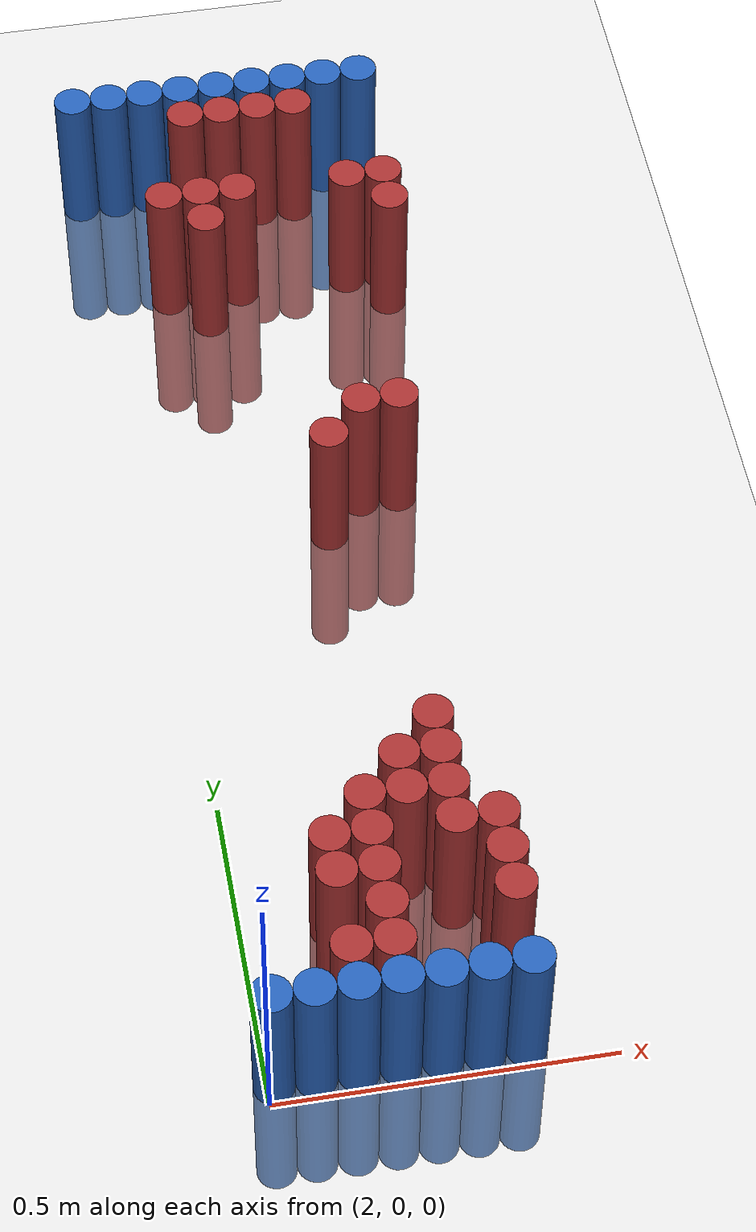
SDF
<sdf version="1.6">
 <world name="default">
  <model name="ground_plane">
   <static>1</static>
   <link name="link">
    <collision name="collision">
     <geometry><plane><normal>0 0 1</normal><size>100 100</size></plane></geometry>
     <surface><friction><ode><mu>100</mu><mu2>50</mu2></ode></friction></surface>
    </collision>
    <visual name="visual">
     <cast_shadows>0</cast_shadows>
     <geometry><plane><normal>0 0 1</normal><size>100 100</size></plane></geometry>
     <material>
      <script><uri>file://media/materials/scripts/gazebo.material</uri><name>Gazebo/Grey</name></script>
     </material>
    </visual>
   </link>
  </model>
  <model name="unit_cylinder_92">
   <static>1</static>
   <pose>1.950000 1.770000 0.000000 0.000000 0.000000 0.000000</pose>
   <link name="link">
    <inertial>
     <mass>1</mass>
     <inertia><ixx>0.145833</ixx><ixy>0</ixy><ixz>0</ixz><iyy>0.145833</iyy><iyz>0</iyz><izz>0.125</izz></inertia>
    </inertial>
    <collision name="collision">
     <geometry><cylinder><radius>0.030000</radius><length>0.5</length></cylinder></geometry>
    </collision>
    <visual name="visual">
     <geometry><cylinder><radius>0.030000</radius><length>0.5</length></cylinder></geometry>
     <material>
      <ambient>0.152000 0.379000 0.720000 1</ambient>
      <diffuse>0.152000 0.379000 0.720000 1</diffuse>
     </material>
     <material>
      <script><name>Gazebo/Grey</name><uri>file://media/materials/scripts/gazebo.material</uri></script>
     </material>
    </visual>
   </link>
  </model>
  <model name="unit_cylinder_93">
   <static>1</static>
   <pose>2.010000 0.030000 0.000000 0.000000 0.000000 0.000000</pose>
   <link name="link">
    <inertial>
     <mass>1</mass>
     <inertia><ixx>0.145833</ixx><ixy>0</ixy><ixz>0</ixz><iyy>0.145833</iyy><iyz>0</iyz><izz>0.125</izz></inertia>
    </inertial>
    <collision name="collision">
     <geometry><cylinder><radius>0.030000</radius><length>0.5</length></cylinder></geometry>
    </collision>
    <visual name="visual">
     <geometry><cylinder><radius>0.030000</radius><length>0.5</length></cylinder></geometry>
     <material>
      <ambient>0.152000 0.379000 0.720000 1</ambient>
      <diffuse>0.152000 0.379000 0.720000 1</diffuse>
     </material>
     <material>
      <script><name>Gazebo/Grey</name><uri>file://media/materials/scripts/gazebo.material</uri></script>
     </material>
    </visual>
   </link>
  </model>
  <model name="unit_cylinder_94">
   <static>1</static>
   <pose>2.010000 1.770000 0.000000 0.000000 0.000000 0.000000</pose>
   <link name="link">
    <inertial>
     <mass>1</mass>
     <inertia><ixx>0.145833</ixx><ixy>0</ixy><ixz>0</ixz><iyy>0.145833</iyy><iyz>0</iyz><izz>0.125</izz></inertia>
    </inertial>
    <collision name="collision">
     <geometry><cylinder><radius>0.030000</radius><length>0.5</length></cylinder></geometry>
    </collision>
    <visual name="visual">
     <geometry><cylinder><radius>0.030000</radius><length>0.5</length></cylinder></geometry>
     <material>
      <ambient>0.152000 0.379000 0.720000 1</ambient>
      <diffuse>0.152000 0.379000 0.720000 1</diffuse>
     </material>
     <material>
      <script><name>Gazebo/Grey</name><uri>file://media/materials/scripts/gazebo.material</uri></script>
     </material>
    </visual>
   </link>
  </model>
  <model name="unit_cylinder_95">
   <static>1</static>
   <pose>2.070000 1.770000 0.000000 0.000000 0.000000 0.000000</pose>
   <link name="link">
    <inertial>
     <mass>1</mass>
     <inertia><ixx>0.145833</ixx><ixy>0</ixy><ixz>0</ixz><iyy>0.145833</iyy><iyz>0</iyz><izz>0.125</izz></inertia>
    </inertial>
    <collision name="collision">
     <geometry><cylinder><radius>0.030000</radius><length>0.5</length></cylinder></geometry>
    </collision>
    <visual name="visual">
     <geometry><cylinder><radius>0.030000</radius><length>0.5</length></cylinder></geometry>
     <material>
      <ambient>0.152000 0.379000 0.720000 1</ambient>
      <diffuse>0.152000 0.379000 0.720000 1</diffuse>
     </material>
     <material>
      <script><name>Gazebo/Grey</name><uri>file://media/materials/scripts/gazebo.material</uri></script>
     </material>
    </visual>
   </link>
  </model>
  <model name="unit_cylinder_96">
   <static>1</static>
   <pose>2.130000 1.770000 0.000000 0.000000 0.000000 0.000000</pose>
   <link name="link">
    <inertial>
     <mass>1</mass>
     <inertia><ixx>0.145833</ixx><ixy>0</ixy><ixz>0</ixz><iyy>0.145833</iyy><iyz>0</iyz><izz>0.125</izz></inertia>
    </inertial>
    <collision name="collision">
     <geometry><cylinder><radius>0.030000</radius><length>0.5</length></cylinder></geometry>
    </collision>
    <visual name="visual">
     <geometry><cylinder><radius>0.030000</radius><length>0.5</length></cylinder></geometry>
     <material>
      <ambient>0.152000 0.379000 0.720000 1</ambient>
      <diffuse>0.152000 0.379000 0.720000 1</diffuse>
     </material>
     <material>
      <script><name>Gazebo/Grey</name><uri>file://media/materials/scripts/gazebo.material</uri></script>
     </material>
    </visual>
   </link>
  </model>
  <model name="unit_cylinder_97">
   <static>1</static>
   <pose>2.190000 1.770000 0.000000 0.000000 0.000000 0.000000</pose>
   <link name="link">
    <inertial>
     <mass>1</mass>
     <inertia><ixx>0.145833</ixx><ixy>0</ixy><ixz>0</ixz><iyy>0.145833</iyy><iyz>0</iyz><izz>0.125</izz></inertia>
    </inertial>
    <collision name="collision">
     <geometry><cylinder><radius>0.030000</radius><length>0.5</length></cylinder></geometry>
    </collision>
    <visual name="visual">
     <geometry><cylinder><radius>0.030000</radius><length>0.5</length></cylinder></geometry>
     <material>
      <ambient>0.152000 0.379000 0.720000 1</ambient>
      <diffuse>0.152000 0.379000 0.720000 1</diffuse>
     </material>
     <material>
      <script><name>Gazebo/Grey</name><uri>file://media/materials/scripts/gazebo.material</uri></script>
     </material>
    </visual>
   </link>
  </model>
  <model name="unit_cylinder_98">
   <static>1</static>
   <pose>2.250000 1.770000 0.000000 0.000000 0.000000 0.000000</pose>
   <link name="link">
    <inertial>
     <mass>1</mass>
     <inertia><ixx>0.145833</ixx><ixy>0</ixy><ixz>0</ixz><iyy>0.145833</iyy><iyz>0</iyz><izz>0.125</izz></inertia>
    </inertial>
    <collision name="collision">
     <geometry><cylinder><radius>0.030000</radius><length>0.5</length></cylinder></geometry>
    </collision>
    <visual name="visual">
     <geometry><cylinder><radius>0.030000</radius><length>0.5</length></cylinder></geometry>
     <material>
      <ambient>0.152000 0.379000 0.720000 1</ambient>
      <diffuse>0.152000 0.379000 0.720000 1</diffuse>
     </material>
     <material>
      <script><name>Gazebo/Grey</name><uri>file://media/materials/scripts/gazebo.material</uri></script>
     </material>
    </visual>
   </link>
  </model>
  <model name="unit_cylinder_99">
   <static>1</static>
   <pose>2.310000 1.770000 0.000000 0.000000 0.000000 0.000000</pose>
   <link name="link">
    <inertial>
     <mass>1</mass>
     <inertia><ixx>0.145833</ixx><ixy>0</ixy><ixz>0</ixz><iyy>0.145833</iyy><iyz>0</iyz><izz>0.125</izz></inertia>
    </inertial>
    <collision name="collision">
     <geometry><cylinder><radius>0.030000</radius><length>0.5</length></cylinder></geometry>
    </collision>
    <visual name="visual">
     <geometry><cylinder><radius>0.030000</radius><length>0.5</length></cylinder></geometry>
     <material>
      <ambient>0.152000 0.379000 0.720000 1</ambient>
      <diffuse>0.152000 0.379000 0.720000 1</diffuse>
     </material>
     <material>
      <script><name>Gazebo/Grey</name><uri>file://media/materials/scripts/gazebo.material</uri></script>
     </material>
    </visual>
   </link>
  </model>
  <model name="unit_cylinder_100">
   <static>1</static>
   <pose>2.370000 1.770000 0.000000 0.000000 0.000000 0.000000</pose>
   <link name="link">
    <inertial>
     <mass>1</mass>
     <inertia><ixx>0.145833</ixx><ixy>0</ixy><ixz>0</ixz><iyy>0.145833</iyy><iyz>0</iyz><izz>0.125</izz></inertia>
    </inertial>
    <collision name="collision">
     <geometry><cylinder><radius>0.030000</radius><length>0.5</length></cylinder></geometry>
    </collision>
    <visual name="visual">
     <geometry><cylinder><radius>0.030000</radius><length>0.5</length></cylinder></geometry>
     <material>
      <ambient>0.152000 0.379000 0.720000 1</ambient>
      <diffuse>0.152000 0.379000 0.720000 1</diffuse>
     </material>
     <material>
      <script><name>Gazebo/Grey</name><uri>file://media/materials/scripts/gazebo.material</uri></script>
     </material>
    </visual>
   </link>
  </model>
  <model name="unit_cylinder_101">
   <static>1</static>
   <pose>2.430000 1.770000 0.000000 0.000000 0.000000 0.000000</pose>
   <link name="link">
    <inertial>
     <mass>1</mass>
     <inertia><ixx>0.145833</ixx><ixy>0</ixy><ixz>0</ixz><iyy>0.145833</iyy><iyz>0</iyz><izz>0.125</izz></inertia>
    </inertial>
    <collision name="collision">
     <geometry><cylinder><radius>0.030000</radius><length>0.5</length></cylinder></geometry>
    </collision>
    <visual name="visual">
     <geometry><cylinder><radius>0.030000</radius><length>0.5</length></cylinder></geometry>
     <material>
      <ambient>0.152000 0.379000 0.720000 1</ambient>
      <diffuse>0.152000 0.379000 0.720000 1</diffuse>
     </material>
     <material>
      <script><name>Gazebo/Grey</name><uri>file://media/materials/scripts/gazebo.material</uri></script>
     </material>
    </visual>
   </link>
  </model>
  <model name="unit_cylinder_125">
   <static>1</static>
   <pose>2.130000 1.710000 0.000000 0.000000 0.000000 0.000000</pose>
   <link name="link">
    <inertial>
     <mass>1</mass>
     <inertia><ixx>0.145833</ixx><ixy>0</ixy><ixz>0</ixz><iyy>0.145833</iyy><iyz>0</iyz><izz>0.125</izz></inertia>
    </inertial>
    <collision name="collision">
     <geometry><cylinder><radius>0.030000</radius><length>0.5</length></cylinder></geometry>
    </collision>
    <visual name="visual">
     <geometry><cylinder><radius>0.030000</radius><length>0.5</length></cylinder></geometry>
     <material>
      <ambient>0.648000 0.192000 0.192000 1</ambient>
      <diffuse>0.648000 0.192000 0.192000 1</diffuse>
     </material>
     <material>
      <script><name>Gazebo/Grey</name><uri>file://media/materials/scripts/gazebo.material</uri></script>
     </material>
    </visual>
   </link>
  </model>
  <model name="unit_cylinder_126">
   <static>1</static>
   <pose>2.190000 1.710000 0.000000 0.000000 0.000000 0.000000</pose>
   <link name="link">
    <inertial>
     <mass>1</mass>
     <inertia><ixx>0.145833</ixx><ixy>0</ixy><ixz>0</ixz><iyy>0.145833</iyy><iyz>0</iyz><izz>0.125</izz></inertia>
    </inertial>
    <collision name="collision">
     <geometry><cylinder><radius>0.030000</radius><length>0.5</length></cylinder></geometry>
    </collision>
    <visual name="visual">
     <geometry><cylinder><radius>0.030000</radius><length>0.5</length></cylinder></geometry>
     <material>
      <ambient>0.648000 0.192000 0.192000 1</ambient>
      <diffuse>0.648000 0.192000 0.192000 1</diffuse>
     </material>
     <material>
      <script><name>Gazebo/Grey</name><uri>file://media/materials/scripts/gazebo.material</uri></script>
     </material>
    </visual>
   </link>
  </model>
  <model name="unit_cylinder_127">
   <static>1</static>
   <pose>2.250000 1.710000 0.000000 0.000000 0.000000 0.000000</pose>
   <link name="link">
    <inertial>
     <mass>1</mass>
     <inertia><ixx>0.145833</ixx><ixy>0</ixy><ixz>0</ixz><iyy>0.145833</iyy><iyz>0</iyz><izz>0.125</izz></inertia>
    </inertial>
    <collision name="collision">
     <geometry><cylinder><radius>0.030000</radius><length>0.5</length></cylinder></geometry>
    </collision>
    <visual name="visual">
     <geometry><cylinder><radius>0.030000</radius><length>0.5</length></cylinder></geometry>
     <material>
      <ambient>0.648000 0.192000 0.192000 1</ambient>
      <diffuse>0.648000 0.192000 0.192000 1</diffuse>
     </material>
     <material>
      <script><name>Gazebo/Grey</name><uri>file://media/materials/scripts/gazebo.material</uri></script>
     </material>
    </visual>
   </link>
  </model>
  <model name="unit_cylinder_128">
   <static>1</static>
   <pose>2.310000 1.710000 0.000000 0.000000 0.000000 0.000000</pose>
   <link name="link">
    <inertial>
     <mass>1</mass>
     <inertia><ixx>0.145833</ixx><ixy>0</ixy><ixz>0</ixz><iyy>0.145833</iyy><iyz>0</iyz><izz>0.125</izz></inertia>
    </inertial>
    <collision name="collision">
     <geometry><cylinder><radius>0.030000</radius><length>0.5</length></cylinder></geometry>
    </collision>
    <visual name="visual">
     <geometry><cylinder><radius>0.030000</radius><length>0.5</length></cylinder></geometry>
     <material>
      <ambient>0.648000 0.192000 0.192000 1</ambient>
      <diffuse>0.648000 0.192000 0.192000 1</diffuse>
     </material>
     <material>
      <script><name>Gazebo/Grey</name><uri>file://media/materials/scripts/gazebo.material</uri></script>
     </material>
    </visual>
   </link>
  </model>
  <model name="unit_cylinder_154">
   <static>1</static>
   <pose>2.070000 1.530000 0.000000 0.000000 0.000000 0.000000</pose>
   <link name="link">
    <inertial>
     <mass>1</mass>
     <inertia><ixx>0.145833</ixx><ixy>0</ixy><ixz>0</ixz><iyy>0.145833</iyy><iyz>0</iyz><izz>0.125</izz></inertia>
    </inertial>
    <collision name="collision">
     <geometry><cylinder><radius>0.030000</radius><length>0.5</length></cylinder></geometry>
    </collision>
    <visual name="visual">
     <geometry><cylinder><radius>0.030000</radius><length>0.5</length></cylinder></geometry>
     <material>
      <ambient>0.648000 0.192000 0.192000 1</ambient>
      <diffuse>0.648000 0.192000 0.192000 1</diffuse>
     </material>
     <material>
      <script><name>Gazebo/Grey</name><uri>file://media/materials/scripts/gazebo.material</uri></script>
     </material>
    </visual>
   </link>
  </model>
  <model name="unit_cylinder_155">
   <static>1</static>
   <pose>2.130000 1.530000 0.000000 0.000000 0.000000 0.000000</pose>
   <link name="link">
    <inertial>
     <mass>1</mass>
     <inertia><ixx>0.145833</ixx><ixy>0</ixy><ixz>0</ixz><iyy>0.145833</iyy><iyz>0</iyz><izz>0.125</izz></inertia>
    </inertial>
    <collision name="collision">
     <geometry><cylinder><radius>0.030000</radius><length>0.5</length></cylinder></geometry>
    </collision>
    <visual name="visual">
     <geometry><cylinder><radius>0.030000</radius><length>0.5</length></cylinder></geometry>
     <material>
      <ambient>0.648000 0.192000 0.192000 1</ambient>
      <diffuse>0.648000 0.192000 0.192000 1</diffuse>
     </material>
     <material>
      <script><name>Gazebo/Grey</name><uri>file://media/materials/scripts/gazebo.material</uri></script>
     </material>
    </visual>
   </link>
  </model>
  <model name="unit_cylinder_156">
   <static>1</static>
   <pose>2.190000 1.530000 0.000000 0.000000 0.000000 0.000000</pose>
   <link name="link">
    <inertial>
     <mass>1</mass>
     <inertia><ixx>0.145833</ixx><ixy>0</ixy><ixz>0</ixz><iyy>0.145833</iyy><iyz>0</iyz><izz>0.125</izz></inertia>
    </inertial>
    <collision name="collision">
     <geometry><cylinder><radius>0.030000</radius><length>0.5</length></cylinder></geometry>
    </collision>
    <visual name="visual">
     <geometry><cylinder><radius>0.030000</radius><length>0.5</length></cylinder></geometry>
     <material>
      <ambient>0.648000 0.192000 0.192000 1</ambient>
      <diffuse>0.648000 0.192000 0.192000 1</diffuse>
     </material>
     <material>
      <script><name>Gazebo/Grey</name><uri>file://media/materials/scripts/gazebo.material</uri></script>
     </material>
    </visual>
   </link>
  </model>
  <model name="unit_cylinder_157">
   <static>1</static>
   <pose>2.370000 1.530000 0.000000 0.000000 0.000000 0.000000</pose>
   <link name="link">
    <inertial>
     <mass>1</mass>
     <inertia><ixx>0.145833</ixx><ixy>0</ixy><ixz>0</ixz><iyy>0.145833</iyy><iyz>0</iyz><izz>0.125</izz></inertia>
    </inertial>
    <collision name="collision">
     <geometry><cylinder><radius>0.030000</radius><length>0.5</length></cylinder></geometry>
    </collision>
    <visual name="visual">
     <geometry><cylinder><radius>0.030000</radius><length>0.5</length></cylinder></geometry>
     <material>
      <ambient>0.648000 0.192000 0.192000 1</ambient>
      <diffuse>0.648000 0.192000 0.192000 1</diffuse>
     </material>
     <material>
      <script><name>Gazebo/Grey</name><uri>file://media/materials/scripts/gazebo.material</uri></script>
     </material>
    </visual>
   </link>
  </model>
  <model name="unit_cylinder_158">
   <static>1</static>
   <pose>2.430000 1.530000 0.000000 0.000000 0.000000 0.000000</pose>
   <link name="link">
    <inertial>
     <mass>1</mass>
     <inertia><ixx>0.145833</ixx><ixy>0</ixy><ixz>0</ixz><iyy>0.145833</iyy><iyz>0</iyz><izz>0.125</izz></inertia>
    </inertial>
    <collision name="collision">
     <geometry><cylinder><radius>0.030000</radius><length>0.5</length></cylinder></geometry>
    </collision>
    <visual name="visual">
     <geometry><cylinder><radius>0.030000</radius><length>0.5</length></cylinder></geometry>
     <material>
      <ambient>0.648000 0.192000 0.192000 1</ambient>
      <diffuse>0.648000 0.192000 0.192000 1</diffuse>
     </material>
     <material>
      <script><name>Gazebo/Grey</name><uri>file://media/materials/scripts/gazebo.material</uri></script>
     </material>
    </visual>
   </link>
  </model>
  <model name="unit_cylinder_162">
   <static>1</static>
   <pose>2.130000 1.470000 0.000000 0.000000 0.000000 0.000000</pose>
   <link name="link">
    <inertial>
     <mass>1</mass>
     <inertia><ixx>0.145833</ixx><ixy>0</ixy><ixz>0</ixz><iyy>0.145833</iyy><iyz>0</iyz><izz>0.125</izz></inertia>
    </inertial>
    <collision name="collision">
     <geometry><cylinder><radius>0.030000</radius><length>0.5</length></cylinder></geometry>
    </collision>
    <visual name="visual">
     <geometry><cylinder><radius>0.030000</radius><length>0.5</length></cylinder></geometry>
     <material>
      <ambient>0.648000 0.192000 0.192000 1</ambient>
      <diffuse>0.648000 0.192000 0.192000 1</diffuse>
     </material>
     <material>
      <script><name>Gazebo/Grey</name><uri>file://media/materials/scripts/gazebo.material</uri></script>
     </material>
    </visual>
   </link>
  </model>
  <model name="unit_cylinder_163">
   <static>1</static>
   <pose>2.430000 1.470000 0.000000 0.000000 0.000000 0.000000</pose>
   <link name="link">
    <inertial>
     <mass>1</mass>
     <inertia><ixx>0.145833</ixx><ixy>0</ixy><ixz>0</ixz><iyy>0.145833</iyy><iyz>0</iyz><izz>0.125</izz></inertia>
    </inertial>
    <collision name="collision">
     <geometry><cylinder><radius>0.030000</radius><length>0.5</length></cylinder></geometry>
    </collision>
    <visual name="visual">
     <geometry><cylinder><radius>0.030000</radius><length>0.5</length></cylinder></geometry>
     <material>
      <ambient>0.648000 0.192000 0.192000 1</ambient>
      <diffuse>0.648000 0.192000 0.192000 1</diffuse>
     </material>
     <material>
      <script><name>Gazebo/Grey</name><uri>file://media/materials/scripts/gazebo.material</uri></script>
     </material>
    </visual>
   </link>
  </model>
  <model name="unit_cylinder_172">
   <static>1</static>
   <pose>2.310000 1.050000 0.000000 0.000000 0.000000 0.000000</pose>
   <link name="link">
    <inertial>
     <mass>1</mass>
     <inertia><ixx>0.145833</ixx><ixy>0</ixy><ixz>0</ixz><iyy>0.145833</iyy><iyz>0</iyz><izz>0.125</izz></inertia>
    </inertial>
    <collision name="collision">
     <geometry><cylinder><radius>0.030000</radius><length>0.5</length></cylinder></geometry>
    </collision>
    <visual name="visual">
     <geometry><cylinder><radius>0.030000</radius><length>0.5</length></cylinder></geometry>
     <material>
      <ambient>0.648000 0.192000 0.192000 1</ambient>
      <diffuse>0.648000 0.192000 0.192000 1</diffuse>
     </material>
     <material>
      <script><name>Gazebo/Grey</name><uri>file://media/materials/scripts/gazebo.material</uri></script>
     </material>
    </visual>
   </link>
  </model>
  <model name="unit_cylinder_173">
   <static>1</static>
   <pose>2.370000 1.050000 0.000000 0.000000 0.000000 0.000000</pose>
   <link name="link">
    <inertial>
     <mass>1</mass>
     <inertia><ixx>0.145833</ixx><ixy>0</ixy><ixz>0</ixz><iyy>0.145833</iyy><iyz>0</iyz><izz>0.125</izz></inertia>
    </inertial>
    <collision name="collision">
     <geometry><cylinder><radius>0.030000</radius><length>0.5</length></cylinder></geometry>
    </collision>
    <visual name="visual">
     <geometry><cylinder><radius>0.030000</radius><length>0.5</length></cylinder></geometry>
     <material>
      <ambient>0.648000 0.192000 0.192000 1</ambient>
      <diffuse>0.648000 0.192000 0.192000 1</diffuse>
     </material>
     <material>
      <script><name>Gazebo/Grey</name><uri>file://media/materials/scripts/gazebo.material</uri></script>
     </material>
    </visual>
   </link>
  </model>
  <model name="unit_cylinder_179">
   <static>1</static>
   <pose>2.250000 0.990000 0.000000 0.000000 0.000000 0.000000</pose>
   <link name="link">
    <inertial>
     <mass>1</mass>
     <inertia><ixx>0.145833</ixx><ixy>0</ixy><ixz>0</ixz><iyy>0.145833</iyy><iyz>0</iyz><izz>0.125</izz></inertia>
    </inertial>
    <collision name="collision">
     <geometry><cylinder><radius>0.030000</radius><length>0.5</length></cylinder></geometry>
    </collision>
    <visual name="visual">
     <geometry><cylinder><radius>0.030000</radius><length>0.5</length></cylinder></geometry>
     <material>
      <ambient>0.648000 0.192000 0.192000 1</ambient>
      <diffuse>0.648000 0.192000 0.192000 1</diffuse>
     </material>
     <material>
      <script><name>Gazebo/Grey</name><uri>file://media/materials/scripts/gazebo.material</uri></script>
     </material>
    </visual>
   </link>
  </model>
  <model name="unit_cylinder_200">
   <static>1</static>
   <pose>2.310000 0.450000 0.000000 0.000000 0.000000 0.000000</pose>
   <link name="link">
    <inertial>
     <mass>1</mass>
     <inertia><ixx>0.145833</ixx><ixy>0</ixy><ixz>0</ixz><iyy>0.145833</iyy><iyz>0</iyz><izz>0.125</izz></inertia>
    </inertial>
    <collision name="collision">
     <geometry><cylinder><radius>0.030000</radius><length>0.5</length></cylinder></geometry>
    </collision>
    <visual name="visual">
     <geometry><cylinder><radius>0.030000</radius><length>0.5</length></cylinder></geometry>
     <material>
      <ambient>0.648000 0.192000 0.192000 1</ambient>
      <diffuse>0.648000 0.192000 0.192000 1</diffuse>
     </material>
     <material>
      <script><name>Gazebo/Grey</name><uri>file://media/materials/scripts/gazebo.material</uri></script>
     </material>
    </visual>
   </link>
  </model>
  <model name="unit_cylinder_204">
   <static>1</static>
   <pose>2.250000 0.390000 0.000000 0.000000 0.000000 0.000000</pose>
   <link name="link">
    <inertial>
     <mass>1</mass>
     <inertia><ixx>0.145833</ixx><ixy>0</ixy><ixz>0</ixz><iyy>0.145833</iyy><iyz>0</iyz><izz>0.125</izz></inertia>
    </inertial>
    <collision name="collision">
     <geometry><cylinder><radius>0.030000</radius><length>0.5</length></cylinder></geometry>
    </collision>
    <visual name="visual">
     <geometry><cylinder><radius>0.030000</radius><length>0.5</length></cylinder></geometry>
     <material>
      <ambient>0.648000 0.192000 0.192000 1</ambient>
      <diffuse>0.648000 0.192000 0.192000 1</diffuse>
     </material>
     <material>
      <script><name>Gazebo/Grey</name><uri>file://media/materials/scripts/gazebo.material</uri></script>
     </material>
    </visual>
   </link>
  </model>
  <model name="unit_cylinder_205">
   <static>1</static>
   <pose>2.310000 0.390000 0.000000 0.000000 0.000000 0.000000</pose>
   <link name="link">
    <inertial>
     <mass>1</mass>
     <inertia><ixx>0.145833</ixx><ixy>0</ixy><ixz>0</ixz><iyy>0.145833</iyy><iyz>0</iyz><izz>0.125</izz></inertia>
    </inertial>
    <collision name="collision">
     <geometry><cylinder><radius>0.030000</radius><length>0.5</length></cylinder></geometry>
    </collision>
    <visual name="visual">
     <geometry><cylinder><radius>0.030000</radius><length>0.5</length></cylinder></geometry>
     <material>
      <ambient>0.648000 0.192000 0.192000 1</ambient>
      <diffuse>0.648000 0.192000 0.192000 1</diffuse>
     </material>
     <material>
      <script><name>Gazebo/Grey</name><uri>file://media/materials/scripts/gazebo.material</uri></script>
     </material>
    </visual>
   </link>
  </model>
  <model name="unit_cylinder_208">
   <static>1</static>
   <pose>2.190000 0.330000 0.000000 0.000000 0.000000 0.000000</pose>
   <link name="link">
    <inertial>
     <mass>1</mass>
     <inertia><ixx>0.145833</ixx><ixy>0</ixy><ixz>0</ixz><iyy>0.145833</iyy><iyz>0</iyz><izz>0.125</izz></inertia>
    </inertial>
    <collision name="collision">
     <geometry><cylinder><radius>0.030000</radius><length>0.5</length></cylinder></geometry>
    </collision>
    <visual name="visual">
     <geometry><cylinder><radius>0.030000</radius><length>0.5</length></cylinder></geometry>
     <material>
      <ambient>0.648000 0.192000 0.192000 1</ambient>
      <diffuse>0.648000 0.192000 0.192000 1</diffuse>
     </material>
     <material>
      <script><name>Gazebo/Grey</name><uri>file://media/materials/scripts/gazebo.material</uri></script>
     </material>
    </visual>
   </link>
  </model>
  <model name="unit_cylinder_209">
   <static>1</static>
   <pose>2.250000 0.330000 0.000000 0.000000 0.000000 0.000000</pose>
   <link name="link">
    <inertial>
     <mass>1</mass>
     <inertia><ixx>0.145833</ixx><ixy>0</ixy><ixz>0</ixz><iyy>0.145833</iyy><iyz>0</iyz><izz>0.125</izz></inertia>
    </inertial>
    <collision name="collision">
     <geometry><cylinder><radius>0.030000</radius><length>0.5</length></cylinder></geometry>
    </collision>
    <visual name="visual">
     <geometry><cylinder><radius>0.030000</radius><length>0.5</length></cylinder></geometry>
     <material>
      <ambient>0.648000 0.192000 0.192000 1</ambient>
      <diffuse>0.648000 0.192000 0.192000 1</diffuse>
     </material>
     <material>
      <script><name>Gazebo/Grey</name><uri>file://media/materials/scripts/gazebo.material</uri></script>
     </material>
    </visual>
   </link>
  </model>
  <model name="unit_cylinder_210">
   <static>1</static>
   <pose>2.310000 0.330000 0.000000 0.000000 0.000000 0.000000</pose>
   <link name="link">
    <inertial>
     <mass>1</mass>
     <inertia><ixx>0.145833</ixx><ixy>0</ixy><ixz>0</ixz><iyy>0.145833</iyy><iyz>0</iyz><izz>0.125</izz></inertia>
    </inertial>
    <collision name="collision">
     <geometry><cylinder><radius>0.030000</radius><length>0.5</length></cylinder></geometry>
    </collision>
    <visual name="visual">
     <geometry><cylinder><radius>0.030000</radius><length>0.5</length></cylinder></geometry>
     <material>
      <ambient>0.648000 0.192000 0.192000 1</ambient>
      <diffuse>0.648000 0.192000 0.192000 1</diffuse>
     </material>
     <material>
      <script><name>Gazebo/Grey</name><uri>file://media/materials/scripts/gazebo.material</uri></script>
     </material>
    </visual>
   </link>
  </model>
  <model name="unit_cylinder_213">
   <static>1</static>
   <pose>2.130000 0.270000 0.000000 0.000000 0.000000 0.000000</pose>
   <link name="link">
    <inertial>
     <mass>1</mass>
     <inertia><ixx>0.145833</ixx><ixy>0</ixy><ixz>0</ixz><iyy>0.145833</iyy><iyz>0</iyz><izz>0.125</izz></inertia>
    </inertial>
    <collision name="collision">
     <geometry><cylinder><radius>0.030000</radius><length>0.5</length></cylinder></geometry>
    </collision>
    <visual name="visual">
     <geometry><cylinder><radius>0.030000</radius><length>0.5</length></cylinder></geometry>
     <material>
      <ambient>0.648000 0.192000 0.192000 1</ambient>
      <diffuse>0.648000 0.192000 0.192000 1</diffuse>
     </material>
     <material>
      <script><name>Gazebo/Grey</name><uri>file://media/materials/scripts/gazebo.material</uri></script>
     </material>
    </visual>
   </link>
  </model>
  <model name="unit_cylinder_214">
   <static>1</static>
   <pose>2.190000 0.270000 0.000000 0.000000 0.000000 0.000000</pose>
   <link name="link">
    <inertial>
     <mass>1</mass>
     <inertia><ixx>0.145833</ixx><ixy>0</ixy><ixz>0</ixz><iyy>0.145833</iyy><iyz>0</iyz><izz>0.125</izz></inertia>
    </inertial>
    <collision name="collision">
     <geometry><cylinder><radius>0.030000</radius><length>0.5</length></cylinder></geometry>
    </collision>
    <visual name="visual">
     <geometry><cylinder><radius>0.030000</radius><length>0.5</length></cylinder></geometry>
     <material>
      <ambient>0.648000 0.192000 0.192000 1</ambient>
      <diffuse>0.648000 0.192000 0.192000 1</diffuse>
     </material>
     <material>
      <script><name>Gazebo/Grey</name><uri>file://media/materials/scripts/gazebo.material</uri></script>
     </material>
    </visual>
   </link>
  </model>
  <model name="unit_cylinder_215">
   <static>1</static>
   <pose>2.310000 0.270000 0.000000 0.000000 0.000000 0.000000</pose>
   <link name="link">
    <inertial>
     <mass>1</mass>
     <inertia><ixx>0.145833</ixx><ixy>0</ixy><ixz>0</ixz><iyy>0.145833</iyy><iyz>0</iyz><izz>0.125</izz></inertia>
    </inertial>
    <collision name="collision">
     <geometry><cylinder><radius>0.030000</radius><length>0.5</length></cylinder></geometry>
    </collision>
    <visual name="visual">
     <geometry><cylinder><radius>0.030000</radius><length>0.5</length></cylinder></geometry>
     <material>
      <ambient>0.648000 0.192000 0.192000 1</ambient>
      <diffuse>0.648000 0.192000 0.192000 1</diffuse>
     </material>
     <material>
      <script><name>Gazebo/Grey</name><uri>file://media/materials/scripts/gazebo.material</uri></script>
     </material>
    </visual>
   </link>
  </model>
  <model name="unit_cylinder_216">
   <static>1</static>
   <pose>2.370000 0.270000 0.000000 0.000000 0.000000 0.000000</pose>
   <link name="link">
    <inertial>
     <mass>1</mass>
     <inertia><ixx>0.145833</ixx><ixy>0</ixy><ixz>0</ixz><iyy>0.145833</iyy><iyz>0</iyz><izz>0.125</izz></inertia>
    </inertial>
    <collision name="collision">
     <geometry><cylinder><radius>0.030000</radius><length>0.5</length></cylinder></geometry>
    </collision>
    <visual name="visual">
     <geometry><cylinder><radius>0.030000</radius><length>0.5</length></cylinder></geometry>
     <material>
      <ambient>0.648000 0.192000 0.192000 1</ambient>
      <diffuse>0.648000 0.192000 0.192000 1</diffuse>
     </material>
     <material>
      <script><name>Gazebo/Grey</name><uri>file://media/materials/scripts/gazebo.material</uri></script>
     </material>
    </visual>
   </link>
  </model>
  <model name="unit_cylinder_219">
   <static>1</static>
   <pose>2.130000 0.210000 0.000000 0.000000 0.000000 0.000000</pose>
   <link name="link">
    <inertial>
     <mass>1</mass>
     <inertia><ixx>0.145833</ixx><ixy>0</ixy><ixz>0</ixz><iyy>0.145833</iyy><iyz>0</iyz><izz>0.125</izz></inertia>
    </inertial>
    <collision name="collision">
     <geometry><cylinder><radius>0.030000</radius><length>0.5</length></cylinder></geometry>
    </collision>
    <visual name="visual">
     <geometry><cylinder><radius>0.030000</radius><length>0.5</length></cylinder></geometry>
     <material>
      <ambient>0.648000 0.192000 0.192000 1</ambient>
      <diffuse>0.648000 0.192000 0.192000 1</diffuse>
     </material>
     <material>
      <script><name>Gazebo/Grey</name><uri>file://media/materials/scripts/gazebo.material</uri></script>
     </material>
    </visual>
   </link>
  </model>
  <model name="unit_cylinder_220">
   <static>1</static>
   <pose>2.190000 0.210000 0.000000 0.000000 0.000000 0.000000</pose>
   <link name="link">
    <inertial>
     <mass>1</mass>
     <inertia><ixx>0.145833</ixx><ixy>0</ixy><ixz>0</ixz><iyy>0.145833</iyy><iyz>0</iyz><izz>0.125</izz></inertia>
    </inertial>
    <collision name="collision">
     <geometry><cylinder><radius>0.030000</radius><length>0.5</length></cylinder></geometry>
    </collision>
    <visual name="visual">
     <geometry><cylinder><radius>0.030000</radius><length>0.5</length></cylinder></geometry>
     <material>
      <ambient>0.648000 0.192000 0.192000 1</ambient>
      <diffuse>0.648000 0.192000 0.192000 1</diffuse>
     </material>
     <material>
      <script><name>Gazebo/Grey</name><uri>file://media/materials/scripts/gazebo.material</uri></script>
     </material>
    </visual>
   </link>
  </model>
  <model name="unit_cylinder_221">
   <static>1</static>
   <pose>2.370000 0.210000 0.000000 0.000000 0.000000 0.000000</pose>
   <link name="link">
    <inertial>
     <mass>1</mass>
     <inertia><ixx>0.145833</ixx><ixy>0</ixy><ixz>0</ixz><iyy>0.145833</iyy><iyz>0</iyz><izz>0.125</izz></inertia>
    </inertial>
    <collision name="collision">
     <geometry><cylinder><radius>0.030000</radius><length>0.5</length></cylinder></geometry>
    </collision>
    <visual name="visual">
     <geometry><cylinder><radius>0.030000</radius><length>0.5</length></cylinder></geometry>
     <material>
      <ambient>0.648000 0.192000 0.192000 1</ambient>
      <diffuse>0.648000 0.192000 0.192000 1</diffuse>
     </material>
     <material>
      <script><name>Gazebo/Grey</name><uri>file://media/materials/scripts/gazebo.material</uri></script>
     </material>
    </visual>
   </link>
  </model>
  <model name="unit_cylinder_225">
   <static>1</static>
   <pose>2.190000 0.150000 0.000000 0.000000 0.000000 0.000000</pose>
   <link name="link">
    <inertial>
     <mass>1</mass>
     <inertia><ixx>0.145833</ixx><ixy>0</ixy><ixz>0</ixz><iyy>0.145833</iyy><iyz>0</iyz><izz>0.125</izz></inertia>
    </inertial>
    <collision name="collision">
     <geometry><cylinder><radius>0.030000</radius><length>0.5</length></cylinder></geometry>
    </collision>
    <visual name="visual">
     <geometry><cylinder><radius>0.030000</radius><length>0.5</length></cylinder></geometry>
     <material>
      <ambient>0.648000 0.192000 0.192000 1</ambient>
      <diffuse>0.648000 0.192000 0.192000 1</diffuse>
     </material>
     <material>
      <script><name>Gazebo/Grey</name><uri>file://media/materials/scripts/gazebo.material</uri></script>
     </material>
    </visual>
   </link>
  </model>
  <model name="unit_cylinder_226">
   <static>1</static>
   <pose>2.370000 0.150000 0.000000 0.000000 0.000000 0.000000</pose>
   <link name="link">
    <inertial>
     <mass>1</mass>
     <inertia><ixx>0.145833</ixx><ixy>0</ixy><ixz>0</ixz><iyy>0.145833</iyy><iyz>0</iyz><izz>0.125</izz></inertia>
    </inertial>
    <collision name="collision">
     <geometry><cylinder><radius>0.030000</radius><length>0.5</length></cylinder></geometry>
    </collision>
    <visual name="visual">
     <geometry><cylinder><radius>0.030000</radius><length>0.5</length></cylinder></geometry>
     <material>
      <ambient>0.648000 0.192000 0.192000 1</ambient>
      <diffuse>0.648000 0.192000 0.192000 1</diffuse>
     </material>
     <material>
      <script><name>Gazebo/Grey</name><uri>file://media/materials/scripts/gazebo.material</uri></script>
     </material>
    </visual>
   </link>
  </model>
  <model name="unit_cylinder_232">
   <static>1</static>
   <pose>2.130000 0.090000 0.000000 0.000000 0.000000 0.000000</pose>
   <link name="link">
    <inertial>
     <mass>1</mass>
     <inertia><ixx>0.145833</ixx><ixy>0</ixy><ixz>0</ixz><iyy>0.145833</iyy><iyz>0</iyz><izz>0.125</izz></inertia>
    </inertial>
    <collision name="collision">
     <geometry><cylinder><radius>0.030000</radius><length>0.5</length></cylinder></geometry>
    </collision>
    <visual name="visual">
     <geometry><cylinder><radius>0.030000</radius><length>0.5</length></cylinder></geometry>
     <material>
      <ambient>0.648000 0.192000 0.192000 1</ambient>
      <diffuse>0.648000 0.192000 0.192000 1</diffuse>
     </material>
     <material>
      <script><name>Gazebo/Grey</name><uri>file://media/materials/scripts/gazebo.material</uri></script>
     </material>
    </visual>
   </link>
  </model>
  <model name="unit_cylinder_233">
   <static>1</static>
   <pose>2.190000 0.090000 0.000000 0.000000 0.000000 0.000000</pose>
   <link name="link">
    <inertial>
     <mass>1</mass>
     <inertia><ixx>0.145833</ixx><ixy>0</ixy><ixz>0</ixz><iyy>0.145833</iyy><iyz>0</iyz><izz>0.125</izz></inertia>
    </inertial>
    <collision name="collision">
     <geometry><cylinder><radius>0.030000</radius><length>0.5</length></cylinder></geometry>
    </collision>
    <visual name="visual">
     <geometry><cylinder><radius>0.030000</radius><length>0.5</length></cylinder></geometry>
     <material>
      <ambient>0.648000 0.192000 0.192000 1</ambient>
      <diffuse>0.648000 0.192000 0.192000 1</diffuse>
     </material>
     <material>
      <script><name>Gazebo/Grey</name><uri>file://media/materials/scripts/gazebo.material</uri></script>
     </material>
    </visual>
   </link>
  </model>
  <model name="unit_cylinder_248">
   <static>1</static>
   <pose>2.070000 0.030000 0.000000 0.000000 0.000000 0.000000</pose>
   <link name="link">
    <inertial>
     <mass>1</mass>
     <inertia><ixx>0.145833</ixx><ixy>0</ixy><ixz>0</ixz><iyy>0.145833</iyy><iyz>0</iyz><izz>0.125</izz></inertia>
    </inertial>
    <collision name="collision">
     <geometry><cylinder><radius>0.030000</radius><length>0.5</length></cylinder></geometry>
    </collision>
    <visual name="visual">
     <geometry><cylinder><radius>0.030000</radius><length>0.5</length></cylinder></geometry>
     <material>
      <ambient>0.152000 0.379000 0.720000 1</ambient>
      <diffuse>0.152000 0.379000 0.720000 1</diffuse>
     </material>
     <material>
      <script><name>Gazebo/Grey</name><uri>file://media/materials/scripts/gazebo.material</uri></script>
     </material>
    </visual>
   </link>
  </model>
  <model name="unit_cylinder_249">
   <static>1</static>
   <pose>2.130000 0.030000 0.000000 0.000000 0.000000 0.000000</pose>
   <link name="link">
    <inertial>
     <mass>1</mass>
     <inertia><ixx>0.145833</ixx><ixy>0</ixy><ixz>0</ixz><iyy>0.145833</iyy><iyz>0</iyz><izz>0.125</izz></inertia>
    </inertial>
    <collision name="collision">
     <geometry><cylinder><radius>0.030000</radius><length>0.5</length></cylinder></geometry>
    </collision>
    <visual name="visual">
     <geometry><cylinder><radius>0.030000</radius><length>0.5</length></cylinder></geometry>
     <material>
      <ambient>0.152000 0.379000 0.720000 1</ambient>
      <diffuse>0.152000 0.379000 0.720000 1</diffuse>
     </material>
     <material>
      <script><name>Gazebo/Grey</name><uri>file://media/materials/scripts/gazebo.material</uri></script>
     </material>
    </visual>
   </link>
  </model>
  <model name="unit_cylinder_250">
   <static>1</static>
   <pose>2.190000 0.030000 0.000000 0.000000 0.000000 0.000000</pose>
   <link name="link">
    <inertial>
     <mass>1</mass>
     <inertia><ixx>0.145833</ixx><ixy>0</ixy><ixz>0</ixz><iyy>0.145833</iyy><iyz>0</iyz><izz>0.125</izz></inertia>
    </inertial>
    <collision name="collision">
     <geometry><cylinder><radius>0.030000</radius><length>0.5</length></cylinder></geometry>
    </collision>
    <visual name="visual">
     <geometry><cylinder><radius>0.030000</radius><length>0.5</length></cylinder></geometry>
     <material>
      <ambient>0.152000 0.379000 0.720000 1</ambient>
      <diffuse>0.152000 0.379000 0.720000 1</diffuse>
     </material>
     <material>
      <script><name>Gazebo/Grey</name><uri>file://media/materials/scripts/gazebo.material</uri></script>
     </material>
    </visual>
   </link>
  </model>
  <model name="unit_cylinder_251">
   <static>1</static>
   <pose>2.250000 0.030000 0.000000 0.000000 0.000000 0.000000</pose>
   <link name="link">
    <inertial>
     <mass>1</mass>
     <inertia><ixx>0.145833</ixx><ixy>0</ixy><ixz>0</ixz><iyy>0.145833</iyy><iyz>0</iyz><izz>0.125</izz></inertia>
    </inertial>
    <collision name="collision">
     <geometry><cylinder><radius>0.030000</radius><length>0.5</length></cylinder></geometry>
    </collision>
    <visual name="visual">
     <geometry><cylinder><radius>0.030000</radius><length>0.5</length></cylinder></geometry>
     <material>
      <ambient>0.152000 0.379000 0.720000 1</ambient>
      <diffuse>0.152000 0.379000 0.720000 1</diffuse>
     </material>
     <material>
      <script><name>Gazebo/Grey</name><uri>file://media/materials/scripts/gazebo.material</uri></script>
     </material>
    </visual>
   </link>
  </model>
  <model name="unit_cylinder_252">
   <static>1</static>
   <pose>2.310000 0.030000 0.000000 0.000000 0.000000 0.000000</pose>
   <link name="link">
    <inertial>
     <mass>1</mass>
     <inertia><ixx>0.145833</ixx><ixy>0</ixy><ixz>0</ixz><iyy>0.145833</iyy><iyz>0</iyz><izz>0.125</izz></inertia>
    </inertial>
    <collision name="collision">
     <geometry><cylinder><radius>0.030000</radius><length>0.5</length></cylinder></geometry>
    </collision>
    <visual name="visual">
     <geometry><cylinder><radius>0.030000</radius><length>0.5</length></cylinder></geometry>
     <material>
      <ambient>0.152000 0.379000 0.720000 1</ambient>
      <diffuse>0.152000 0.379000 0.720000 1</diffuse>
     </material>
     <material>
      <script><name>Gazebo/Grey</name><uri>file://media/materials/scripts/gazebo.material</uri></script>
     </material>
    </visual>
   </link>
  </model>
  <model name="unit_cylinder_253">
   <static>1</static>
   <pose>2.370000 0.030000 0.000000 0.000000 0.000000 0.000000</pose>
   <link name="link">
    <inertial>
     <mass>1</mass>
     <inertia><ixx>0.145833</ixx><ixy>0</ixy><ixz>0</ixz><iyy>0.145833</iyy><iyz>0</iyz><izz>0.125</izz></inertia>
    </inertial>
    <collision name="collision">
     <geometry><cylinder><radius>0.030000</radius><length>0.5</length></cylinder></geometry>
    </collision>
    <visual name="visual">
     <geometry><cylinder><radius>0.030000</radius><length>0.5</length></cylinder></geometry>
     <material>
      <ambient>0.152000 0.379000 0.720000 1</ambient>
      <diffuse>0.152000 0.379000 0.720000 1</diffuse>
     </material>
     <material>
      <script><name>Gazebo/Grey</name><uri>file://media/materials/scripts/gazebo.material</uri></script>
     </material>
    </visual>
   </link>
  </model>
 </world>
</sdf>
